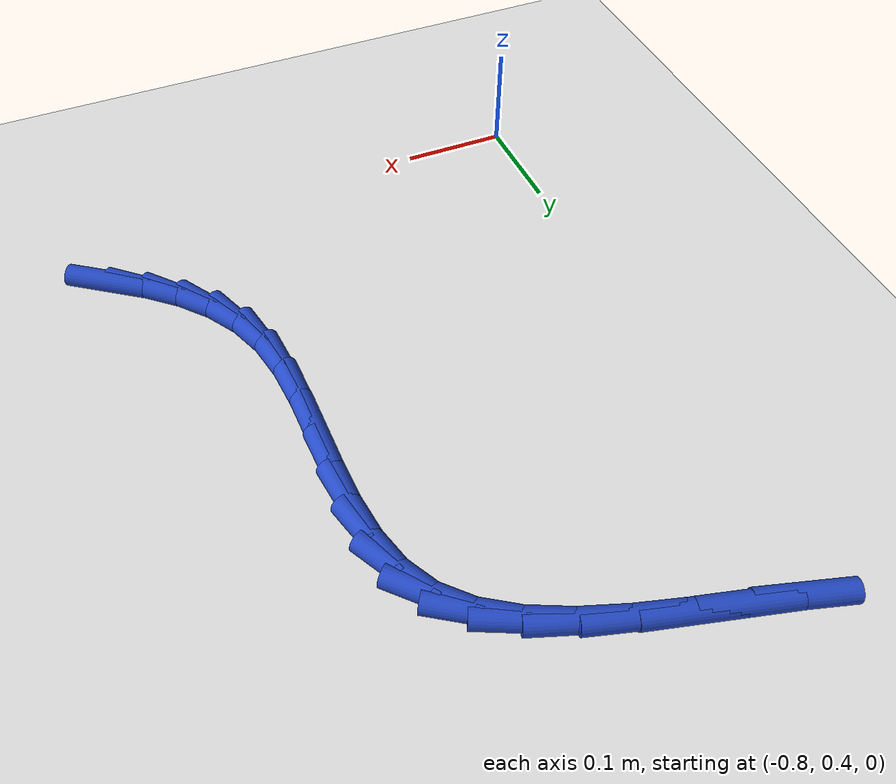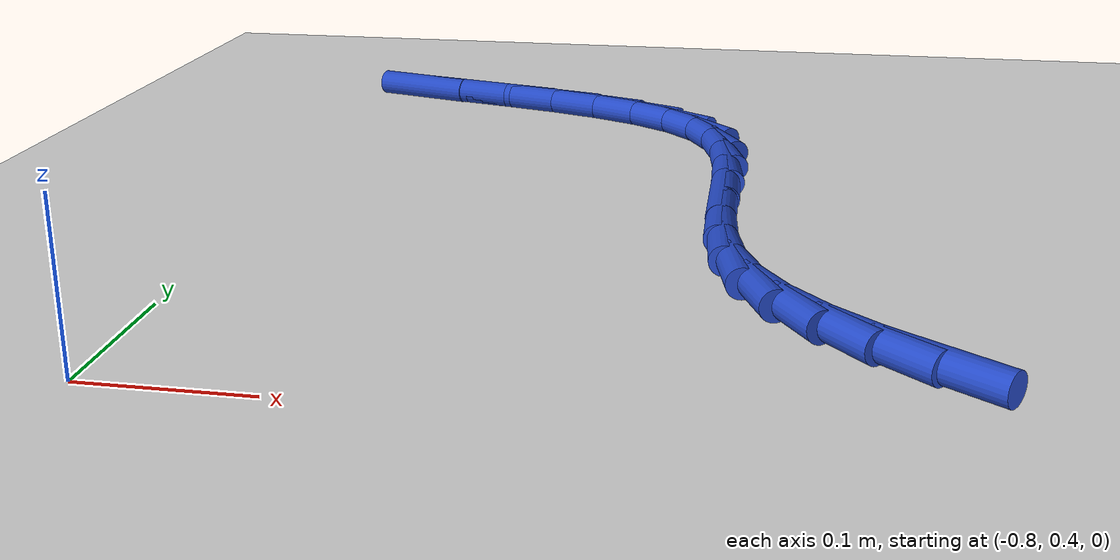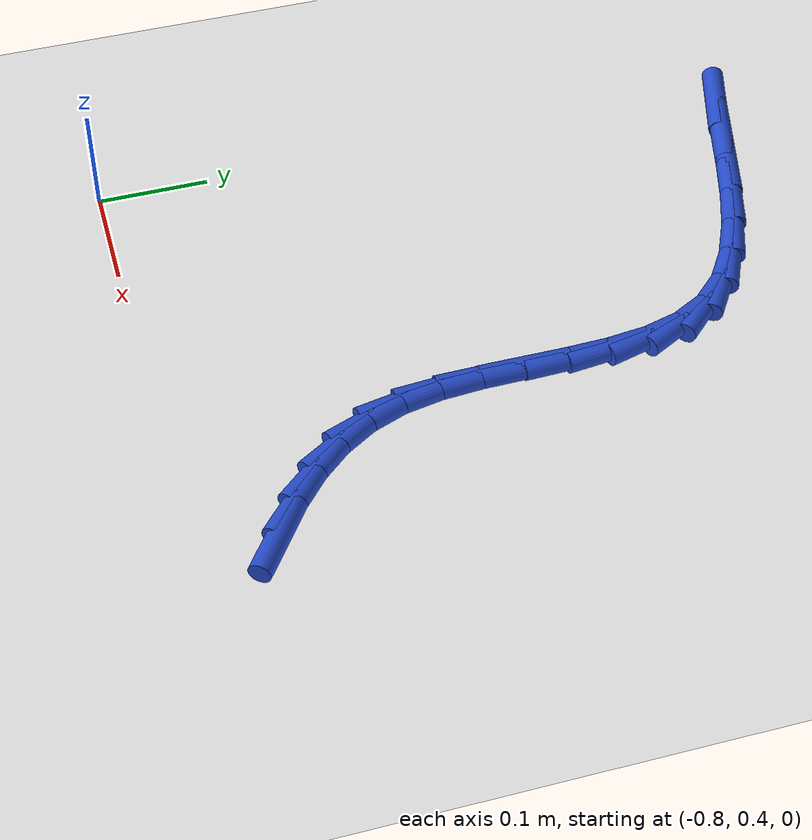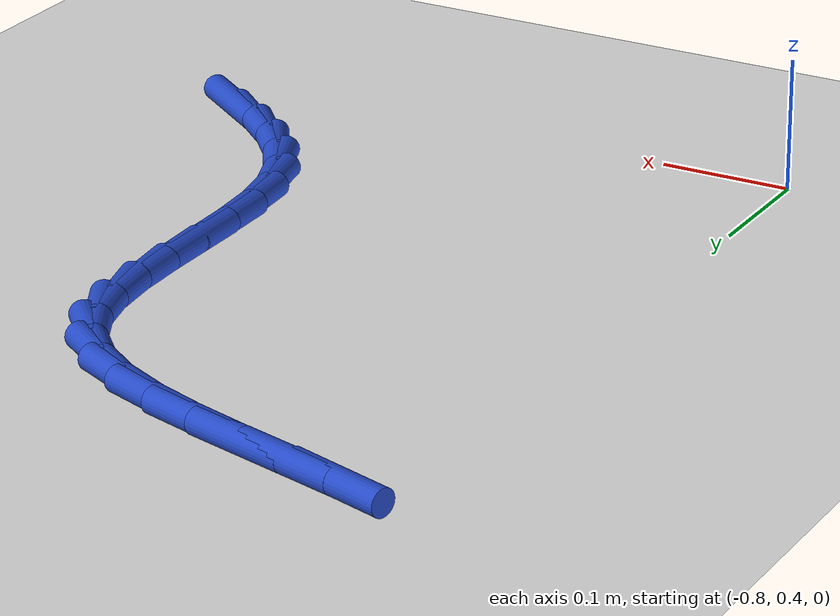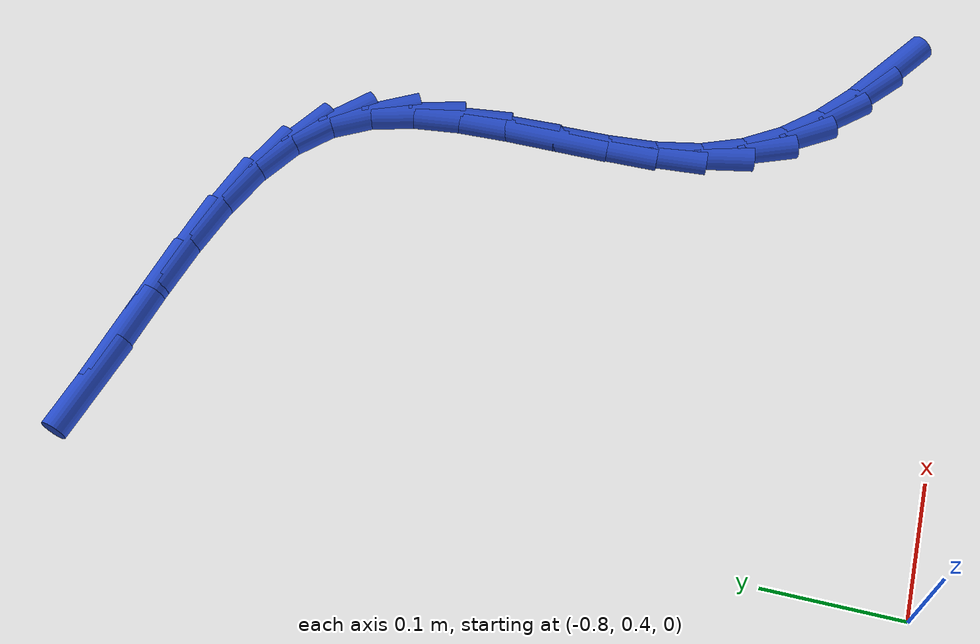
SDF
<sdf version="1.6">
 <world name="default">
  <model name="ground_plane">
   <static>1</static>
   <link name="link">
    <collision name="collision">
     <geometry><plane><normal>0 0 1</normal><size>100 100</size></plane></geometry>
     <surface><friction><ode><mu>100</mu><mu2>50</mu2></ode></friction></surface>
    </collision>
    <visual name="visual">
     <cast_shadows>0</cast_shadows>
     <geometry><plane><normal>0 0 1</normal><size>100 100</size></plane></geometry>
     <material>
      <script><uri>file://media/materials/scripts/gazebo.material</uri><name>Gazebo/WhiteGlow</name></script>
     </material>
    </visual>
   </link>
  </model>
  <model name="line">
   <link name="link_18">
    <pose>-0.3717090716845643 0.47036150606233873 0.01 0 1.57 -0.6160321023677686</pose>
    <collision name="collision">
     <geometry><cylinder><radius>0.01</radius><length>0.08</length></cylinder></geometry>
    </collision>
    <visual name="visual">
     <material>
      <script><name>Gazebo/Blue</name><uri>file://media/materials/scripts/gazebo.material</uri></script>
     </material>
     <geometry><cylinder><radius>0.01</radius><length>0.08</length></cylinder></geometry>
    </visual>
   </link>
   <link name="link_19">
    <pose>-0.4013108254852458 0.4913176442299673 0.01 0 1.57 -0.7170652745694327</pose>
    <collision name="collision">
     <geometry><cylinder><radius>0.01</radius><length>0.08</length></cylinder></geometry>
    </collision>
    <visual name="visual">
     <material>
      <script><name>Gazebo/Blue</name><uri>file://media/materials/scripts/gazebo.material</uri></script>
     </material>
     <geometry><cylinder><radius>0.01</radius><length>0.08</length></cylinder></geometry>
    </visual>
   </link>
   <link name="link_20">
    <pose>-0.4276128820482615 0.5142501169190916 0.01 0 1.57 -0.8491942464901826</pose>
    <collision name="collision">
     <geometry><cylinder><radius>0.01</radius><length>0.08</length></cylinder></geometry>
    </collision>
    <visual name="visual">
     <material>
      <script><name>Gazebo/Blue</name><uri>file://media/materials/scripts/gazebo.material</uri></script>
     </material>
     <geometry><cylinder><radius>0.01</radius><length>0.08</length></cylinder></geometry>
    </visual>
   </link>
   <link name="link_21">
    <pose>-0.44990638810198647 0.5395863422923115 0.01 0 1.57 -1.0129254550661397</pose>
    <collision name="collision">
     <geometry><cylinder><radius>0.01</radius><length>0.08</length></cylinder></geometry>
    </collision>
    <visual name="visual">
     <material>
      <script><name>Gazebo/Blue</name><uri>file://media/materials/scripts/gazebo.material</uri></script>
     </material>
     <geometry><cylinder><radius>0.01</radius><length>0.08</length></cylinder></geometry>
    </visual>
   </link>
   <link name="link_22">
    <pose>-0.46748249037479583 0.567753738512227 0.01 0 1.57 -1.2018105742687184</pose>
    <collision name="collision">
     <geometry><cylinder><radius>0.01</radius><length>0.08</length></cylinder></geometry>
    </collision>
    <visual name="visual">
     <material>
      <script><name>Gazebo/Blue</name><uri>file://media/materials/scripts/gazebo.material</uri></script>
     </material>
     <geometry><cylinder><radius>0.01</radius><length>0.08</length></cylinder></geometry>
    </visual>
   </link>
   <link name="link_23">
    <pose>-0.47963433969127683 0.5991784867538567 0.01 0 1.57 -1.381108339866008</pose>
    <collision name="collision">
     <geometry><cylinder><radius>0.01</radius><length>0.08</length></cylinder></geometry>
    </collision>
    <visual name="visual">
     <material>
      <script><name>Gazebo/Blue</name><uri>file://media/materials/scripts/gazebo.material</uri></script>
     </material>
     <geometry><cylinder><radius>0.01</radius><length>0.08</length></cylinder></geometry>
    </visual>
   </link>
   <link name="link_24">
    <pose>-0.4862987250827129 0.6338894956142003 0.01 0 1.57 -1.4987221226688456</pose>
    <collision name="collision">
     <geometry><cylinder><radius>0.01</radius><length>0.08</length></cylinder></geometry>
    </collision>
    <visual name="visual">
     <material>
      <script><name>Gazebo/Blue</name><uri>file://media/materials/scripts/gazebo.material</uri></script>
     </material>
     <geometry><cylinder><radius>0.01</radius><length>0.08</length></cylinder></geometry>
    </visual>
   </link>
   <link name="link_25">
    <pose>-0.48897457284778567 0.6709514762685064 0.01 0 1.57 -1.5598760309836508</pose>
    <collision name="collision">
     <geometry><cylinder><radius>0.01</radius><length>0.08</length></cylinder></geometry>
    </collision>
    <visual name="visual">
     <material>
      <script><name>Gazebo/Blue</name><uri>file://media/materials/scripts/gazebo.material</uri></script>
     </material>
     <geometry><cylinder><radius>0.01</radius><length>0.08</length></cylinder></geometry>
    </visual>
   </link>
   <link name="link_26">
    <pose>-0.4893932104971408 0.7092856949758402 0.01 0 1.57 1.5680127551139422</pose>
    <collision name="collision">
     <geometry><cylinder><radius>0.01</radius><length>0.08</length></cylinder></geometry>
    </collision>
    <visual name="visual">
     <material>
      <script><name>Gazebo/Blue</name><uri>file://media/materials/scripts/gazebo.material</uri></script>
     </material>
     <geometry><cylinder><radius>0.01</radius><length>0.08</length></cylinder></geometry>
    </visual>
   </link>
   <link name="link_27">
    <pose>-0.48928596554142445 0.7478134179952666 0.01 0 1.57 -1.5416301258726686</pose>
    <collision name="collision">
     <geometry><cylinder><radius>0.01</radius><length>0.08</length></cylinder></geometry>
    </collision>
    <visual name="visual">
     <material>
      <script><name>Gazebo/Blue</name><uri>file://media/materials/scripts/gazebo.material</uri></script>
     </material>
     <geometry><cylinder><radius>0.01</radius><length>0.08</length></cylinder></geometry>
    </visual>
   </link>
   <link name="link_28">
    <pose>-0.4903841654912825 0.7854559115858514 0.01 0 1.57 -1.4581823588500231</pose>
    <collision name="collision">
     <geometry><cylinder><radius>0.01</radius><length>0.08</length></cylinder></geometry>
    </collision>
    <visual name="visual">
     <material>
      <script><name>Gazebo/Blue</name><uri>file://media/materials/scripts/gazebo.material</uri></script>
     </material>
     <geometry><cylinder><radius>0.01</radius><length>0.08</length></cylinder></geometry>
    </visual>
   </link>
   <link name="link_29">
    <pose>-0.49441913785736064 0.821134442006659 0.01 0 1.57 -1.310188689782235</pose>
    <collision name="collision">
     <geometry><cylinder><radius>0.01</radius><length>0.08</length></cylinder></geometry>
    </collision>
    <visual name="visual">
     <material>
      <script><name>Gazebo/Blue</name><uri>file://media/materials/scripts/gazebo.material</uri></script>
     </material>
     <geometry><cylinder><radius>0.01</radius><length>0.08</length></cylinder></geometry>
    </visual>
   </link>
   <link name="link_30">
    <pose>-0.5031222101503049 0.8537702755167552 0.01 0 1.57 -1.0837153831762578</pose>
    <collision name="collision">
     <geometry><cylinder><radius>0.01</radius><length>0.08</length></cylinder></geometry>
    </collision>
    <visual name="visual">
     <material>
      <script><name>Gazebo/Blue</name><uri>file://media/materials/scripts/gazebo.material</uri></script>
     </material>
     <geometry><cylinder><radius>0.01</radius><length>0.08</length></cylinder></geometry>
    </visual>
   </link>
   <link name="link_31">
    <pose>-0.5182247060138433 0.8822846807492724 0.01 0 1.57 -0.8064986072247172</pose>
    <collision name="collision">
     <geometry><cylinder><radius>0.01</radius><length>0.08</length></cylinder></geometry>
    </collision>
    <visual name="visual">
     <material>
      <script><name>Gazebo/Blue</name><uri>file://media/materials/scripts/gazebo.material</uri></script>
     </material>
     <geometry><cylinder><radius>0.01</radius><length>0.08</length></cylinder></geometry>
    </visual>
   </link>
   <link name="link_32">
    <pose>-0.5409022980973601 0.9059400643004443 0.01 0 1.57 -0.5830640514549351</pose>
    <collision name="collision">
     <geometry><cylinder><radius>0.01</radius><length>0.08</length></cylinder></geometry>
    </collision>
    <visual name="visual">
     <material>
      <script><name>Gazebo/Blue</name><uri>file://media/materials/scripts/gazebo.material</uri></script>
     </material>
     <geometry><cylinder><radius>0.01</radius><length>0.08</length></cylinder></geometry>
    </visual>
   </link>
   <link name="link_33">
    <pose>-0.5702340636859691 0.9252860225300399 0.01 0 1.57 -0.43083295113870296</pose>
    <collision name="collision">
     <geometry><cylinder><radius>0.01</radius><length>0.08</length></cylinder></geometry>
    </collision>
    <visual name="visual">
     <material>
      <script><name>Gazebo/Blue</name><uri>file://media/materials/scripts/gazebo.material</uri></script>
     </material>
     <geometry><cylinder><radius>0.01</radius><length>0.08</length></cylinder></geometry>
    </visual>
   </link>
   <link name="link_34">
    <pose>-0.6048046665708838 0.9411756934344973 0.01 0 1.57 -0.3331571902066949</pose>
    <collision name="collision">
     <geometry><cylinder><radius>0.01</radius><length>0.08</length></cylinder></geometry>
    </collision>
    <visual name="visual">
     <material>
      <script><name>Gazebo/Blue</name><uri>file://media/materials/scripts/gazebo.material</uri></script>
     </material>
     <geometry><cylinder><radius>0.01</radius><length>0.08</length></cylinder></geometry>
    </visual>
   </link>
   <link name="link_35">
    <pose>-0.6431987705433173 0.954462215010254 0.01 0 1.57 -0.27554943426201184</pose>
    <collision name="collision">
     <geometry><cylinder><radius>0.01</radius><length>0.08</length></cylinder></geometry>
    </collision>
    <visual name="visual">
     <material>
      <script><name>Gazebo/Blue</name><uri>file://media/materials/scripts/gazebo.material</uri></script>
     </material>
     <geometry><cylinder><radius>0.01</radius><length>0.08</length></cylinder></geometry>
    </visual>
   </link>
   <link name="link_36">
    <pose>-0.6840010393944828 0.9659987252537473 0.01 0 1.57 -0.24927202328203057</pose>
    <collision name="collision">
     <geometry><cylinder><radius>0.01</radius><length>0.08</length></cylinder></geometry>
    </collision>
    <visual name="visual">
     <material>
      <script><name>Gazebo/Blue</name><uri>file://media/materials/scripts/gazebo.material</uri></script>
     </material>
     <geometry><cylinder><radius>0.01</radius><length>0.08</length></cylinder></geometry>
    </visual>
   </link>
   <link name="link_37">
    <pose>-0.7257961369155934 0.9766383621614153 0.01 0 1.57 -0.2507201966955568</pose>
    <collision name="collision">
     <geometry><cylinder><radius>0.01</radius><length>0.08</length></cylinder></geometry>
    </collision>
    <visual name="visual">
     <material>
      <script><name>Gazebo/Blue</name><uri>file://media/materials/scripts/gazebo.material</uri></script>
     </material>
     <geometry><cylinder><radius>0.01</radius><length>0.08</length></cylinder></geometry>
    </visual>
   </link>
   <link name="link_38">
    <pose>-0.767168726897863 0.9872342637296955 0.01 0 1.57 -0.2808622549242954</pose>
    <collision name="collision">
     <geometry><cylinder><radius>0.01</radius><length>0.08</length></cylinder></geometry>
    </collision>
    <visual name="visual">
     <material>
      <script><name>Gazebo/Blue</name><uri>file://media/materials/scripts/gazebo.material</uri></script>
     </material>
     <geometry><cylinder><radius>0.01</radius><length>0.08</length></cylinder></geometry>
    </visual>
   </link>
  </model>
 </world>
</sdf>
